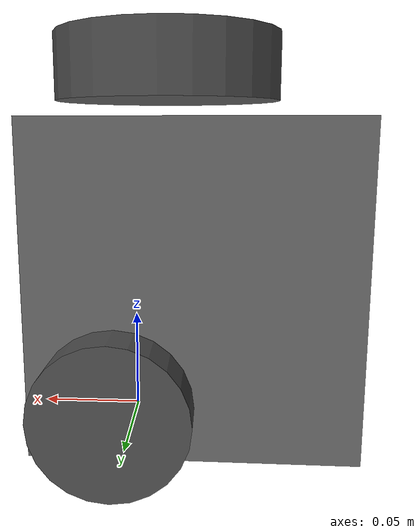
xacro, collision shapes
<?xml version="1.0"?>
<robot xmlns:xacro="http://www.ros.org/wiki/xacro" name="turtlebot3_burger">

  <xacro:include filename="$(find turtlebot_description)/urdf/turtlebot3_burger.urdf"/>
  <xacro:include filename="$(find turtlebot_description)/urdf/robot_gazebo.xacro"/>
  <xacro:include filename="$(find turtlebot_description)/urdf/robot_ros2_control.xacro"/>

</robot>

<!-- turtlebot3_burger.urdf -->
<robot name="turtlebot3_burger"
  xmlns:xacro="http://ros.org/wiki/xacro">

  <!-- Init colour -->
  <material name="black">
      <color rgba="0.0 0.0 0.0 1.0"/>
  </material>

  <material name="dark">
    <color rgba="0.3 0.3 0.3 1.0"/>
  </material>

  <material name="light_black">
    <color rgba="0.4 0.4 0.4 1.0"/>
  </material>

  <material name="blue">
    <color rgba="0.0 0.0 0.8 1.0"/>
  </material>

  <material name="green">
    <color rgba="0.0 0.8 0.0 1.0"/>
  </material>

  <material name="grey">
    <color rgba="0.5 0.5 0.5 1.0"/>
  </material>

  <material name="orange">
    <color rgba="1.0 0.4235 0.0392 1.0"/>
  </material>

  <material name="brown">
    <color rgba="0.8706 0.8118 0.7647 1.0"/>
  </material>

  <material name="red">
    <color rgba="0.8 0.0 0.0 1.0"/>
  </material>

  <material name="white">
    <color rgba="1.0 1.0 1.0 1.0"/>
  </material>

  <link name="base_footprint"/>

  <joint name="base_joint" type="fixed">
    <parent link="base_footprint"/>
    <child link="base_link"/>
    <origin xyz="0.0 0.0 0.010" rpy="0 0 0"/>
  </joint>

  <link name="base_link">
    <visual>
      <origin xyz="-0.032 0 0.0" rpy="0 0 0"/>
      <geometry>
        <mesh filename="package://turtlebot_description/meshes/burger_base.stl" scale="0.001 0.001 0.001"/>
      </geometry>
      <material name="light_black"/>
    </visual>

    <collision>
      <origin xyz="-0.032 0 0.070" rpy="0 0 0"/>
      <geometry>
        <box size="0.140 0.140 0.143"/>
      </geometry>
    </collision>

    <inertial>
      <origin xyz="0 0 0" rpy="0 0 0"/>
      <mass value="8.2573504e-01"/>
      <inertia ixx="2.2124416e-03" ixy="-1.2294101e-05" ixz="3.4938785e-05" iyy="2.1193702e-03" iyz="-5.0120904e-06" izz="2.0064271e-03" />
    </inertial>
  </link>

  <joint name="wheel_left_joint" type="continuous">
    <parent link="base_link"/>
    <child link="wheel_left_link"/>
    <origin xyz="0.0 0.080 0.023" rpy="-1.57 0 0"/>
    <axis xyz="0 0 1"/>
  </joint>

  <link name="wheel_left_link">
    <visual>
      <origin xyz="0 0 0" rpy="1.57 0 0"/>
      <geometry>
        <mesh filename="package://turtlebot_description/meshes/left_tire.stl" scale="0.001 0.001 0.001"/>
      </geometry>
      <material name="dark"/>
    </visual>

    <collision>
      <origin xyz="0 0 0" rpy="0 0 0"/>
      <geometry>
        <cylinder length="0.018" radius="0.033"/>
      </geometry>
    </collision>

    <inertial>
      <origin xyz="0 0 0" />
      <mass value="2.8498940e-02" />
      <inertia ixx="1.1175580e-05" ixy="-4.2369783e-11" ixz="-5.9381719e-09" iyy="1.1192413e-05" iyz="-1.4400107e-11" izz="2.0712558e-05" />
    </inertial>
  </link>

  <joint name="wheel_right_joint" type="continuous">
    <parent link="base_link"/>
    <child link="wheel_right_link"/>
    <origin xyz="0.0 -0.080 0.023" rpy="-1.57 0 0"/>
    <axis xyz="0 0 1"/>
  </joint>

  <link name="wheel_right_link">
    <visual>
      <origin xyz="0 0 0" rpy="1.57 0 0"/>
      <geometry>
        <mesh filename="package://turtlebot_description/meshes/right_tire.stl" scale="0.001 0.001 0.001"/>
      </geometry>
      <material name="dark"/>
    </visual>

    <collision>
      <origin xyz="0 0 0" rpy="0 0 0"/>
      <geometry>
        <cylinder length="0.018" radius="0.033"/>
      </geometry>
    </collision>

    <inertial>
      <origin xyz="0 0 0" />
      <mass value="2.8498940e-02" />
      <inertia ixx="1.1175580e-05" ixy="-4.2369783e-11" ixz="-5.9381719e-09" iyy="1.1192413e-05" iyz="-1.4400107e-11" izz="2.0712558e-05" />
    </inertial>
  </link>

  <joint name="caster_back_joint" type="fixed">
    <parent link="base_link"/>
    <child link="caster_back_link"/>
    <origin xyz="-0.081 0 -0.003" rpy="-1.57 0 0"/>
  </joint>

  <link name="caster_back_link">
    <visual>
      <origin xyz="0 0.00 0" rpy="0 0 0"/>
      <geometry>
        <sphere radius= "0.009"/>
      </geometry>
      <material name="light_black"/>
    </visual>

    <collision>
      <origin xyz="0 0.00 0" rpy="0 0 0"/>
      <geometry>
        <sphere radius= "0.009"/>
      </geometry>
    </collision>

    <inertial>
      <origin xyz="0 0 0" />
      <mass value="0.005" />
      <inertia ixx="0.001" ixy="0.0" ixz="0.0" iyy="0.001" iyz="0.0" izz="0.001" />
    </inertial>
  </link>

  <joint name="imu_joint" type="fixed">
    <parent link="base_link"/>
    <child link="imu_link"/>
    <origin xyz="-0.032 0 0.068" rpy="0 0 0"/>
  </joint>

  <link name="imu_link"/>

  <joint name="scan_joint" type="fixed">
    <parent link="base_link"/>
    <child link="laser_link"/>
    <origin xyz="-0.032 0 0.172" rpy="0 0 0"/>
  </joint>

  <link name="laser_link">
    <visual>
      <origin xyz="0 0 0.0" rpy="0 0 0"/>
      <geometry>
        <mesh filename="package://turtlebot_description/meshes/lds.stl" scale="0.001 0.001 0.001"/>
      </geometry>
      <material name="dark"/>
    </visual>

    <collision>
      <origin xyz="0.015 0 -0.0065" rpy="0 0 0"/>
      <geometry>
        <cylinder length="0.0315" radius="0.055"/>
      </geometry>
    </collision>

    <inertial>
      <mass value="0.114" />
      <origin xyz="0 0 0" />
      <inertia ixx="0.001" ixy="0.0" ixz="0.0" iyy="0.001" iyz="0.0" izz="0.001" />
    </inertial>
  </link>

</robot>
